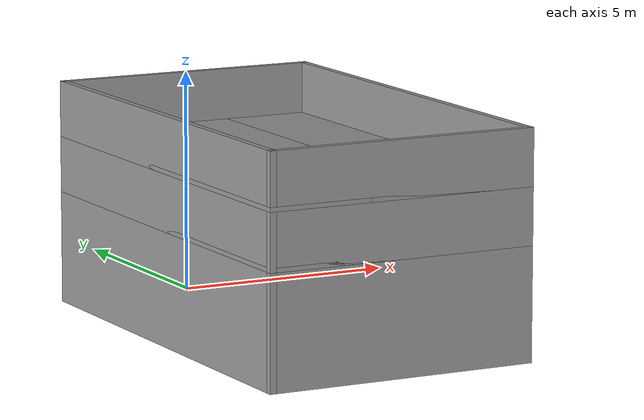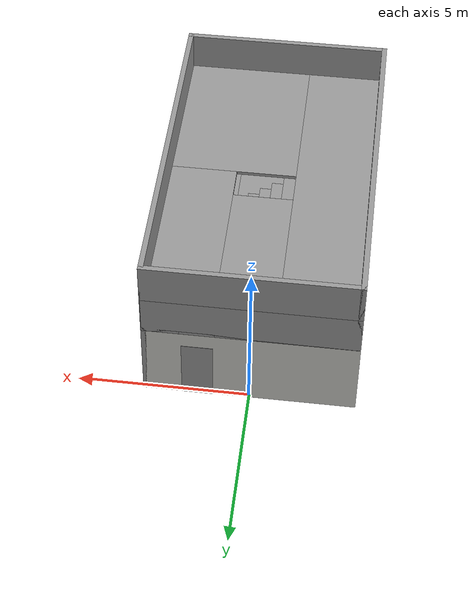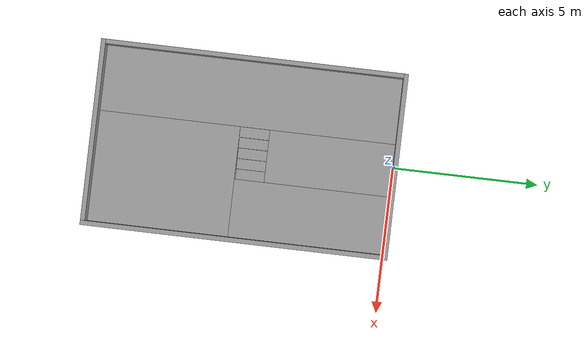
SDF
<?xml version='1.0'?>
<sdf version='1.6'>
  <model name='stairs_environment'>
    <pose frame=''>0 -5 0 0 -0 0</pose>
    <link name='Door_2'>
      <collision name='Door_2_Collision'>
        <geometry>
          <box>
            <size>0.9 0.17 2</size>
          </box>
        </geometry>
        <pose frame=''>0 0 1 0 -0 0</pose>
      </collision>
      <visual name='Door_2_Visual'>
        <pose frame=''>0 0 1 0 -0 0</pose>
        <geometry>
          <box>
            <size>0.9 0.17 2</size>
          </box>
        </geometry>
        <material>
          <script>
            <uri>file://media/materials/scripts/gazebo.material</uri>
            <name>Gazebo/Grey</name>
          </script>
        </material>
      </visual>
      <pose frame=''>1.5 5 0 0 -0 0</pose>
    </link>
    <link name='Floor_1'>
      <pose frame=''>0 0 2.5 0 -0 0</pose>
      <visual name='Floor_1_Visual_0'>
        <pose frame=''>-1.0375 0 0.05 0 -0 0</pose>
        <geometry>
          <box>
            <size>4.075 10.15 0.1</size>
          </box>
        </geometry>
        <material>
          <script>
            <uri>file://media/materials/scripts/gazebo.material</uri>
            <name>Gazebo/Grey</name>
          </script>
          <ambient>1 1 1 1</ambient>
        </material>
        <meta>
          <layer>1</layer>
        </meta>
      </visual>
      <collision name='Floor_1_Collision_0'>
        <geometry>
          <box>
            <size>4.075 10.15 0.1</size>
          </box>
        </geometry>
        <pose frame=''>-1.0375 0 0.05 0 -0 0</pose>
      </collision>
      <visual name='Floor_1_Visual_1'>
        <pose frame=''>2.0375 -2.1625 0.05 0 -0 0</pose>
        <geometry>
          <box>
            <size>2.075 5.825 0.1</size>
          </box>
        </geometry>
        <material>
          <script>
            <uri>file://media/materials/scripts/gazebo.material</uri>
            <name>Gazebo/Grey</name>
          </script>
          <ambient>1 1 1 1</ambient>
        </material>
        <meta>
          <layer>1</layer>
        </meta>
      </visual>
      <collision name='Floor_1_Collision_1'>
        <geometry>
          <box>
            <size>2.075 5.825 0.1</size>
          </box>
        </geometry>
        <pose frame=''>2.0375 -2.1625 0.05 0 -0 0</pose>
      </collision>
      <visual name='Floor_1_Visual_2'>
        <pose frame=''>2.5375 2.9125 0.05 0 -0 0</pose>
        <geometry>
          <box>
            <size>1.075 4.325 0.1</size>
          </box>
        </geometry>
        <material>
          <script>
            <uri>file://media/materials/scripts/gazebo.material</uri>
            <name>Gazebo/Grey</name>
          </script>
          <ambient>1 1 1 1</ambient>
        </material>
        <meta>
          <layer>1</layer>
        </meta>
      </visual>
      <collision name='Floor_1_Collision_2'>
        <geometry>
          <box>
            <size>1.075 4.325 0.1</size>
          </box>
        </geometry>
        <pose frame=''>2.5375 2.9125 0.05 0 -0 0</pose>
      </collision>
      <visual name='Floor_1_Visual_3'>
        <pose frame=''>1.5 4.6625 0.05 0 -0 0</pose>
        <geometry>
          <box>
            <size>1 0.825 0.1</size>
          </box>
        </geometry>
        <material>
          <script>
            <uri>file://media/materials/scripts/gazebo.material</uri>
            <name>Gazebo/Grey</name>
          </script>
          <ambient>1 1 1 1</ambient>
        </material>
        <meta>
          <layer>1</layer>
        </meta>
      </visual>
      <collision name='Floor_1_Collision_3'>
        <geometry>
          <box>
            <size>1 0.825 0.1</size>
          </box>
        </geometry>
        <pose frame=''>1.5 4.6625 0.05 0 -0 0</pose>
      </collision>
    </link>
    <link name='Floor_2'>
      <pose frame=''>0 0 3.75 0 -0 0</pose>
      <visual name='Floor_2_Visual_0'>
        <pose frame=''>-1.9125 0 0.05 0 -0 0</pose>
        <geometry>
          <box>
            <size>2.325 10.15 0.1</size>
          </box>
        </geometry>
        <material>
          <script>
            <uri>file://media/materials/scripts/gazebo.material</uri>
            <name>Gazebo/Grey</name>
          </script>
          <ambient>1 1 1 1</ambient>
        </material>
        <meta>
          <layer>2</layer>
        </meta>
      </visual>
      <collision name='Floor_2_Collision_0'>
        <geometry>
          <box>
            <size>2.325 10.15 0.1</size>
          </box>
        </geometry>
        <pose frame=''>-1.9125 0 0.05 0 -0 0</pose>
      </collision>
      <visual name='Floor_2_Visual_1'>
        <pose frame=''>1.1625 -2.66 0.05 0 -0 0</pose>
        <geometry>
          <box>
            <size>3.825 4.83 0.1</size>
          </box>
        </geometry>
        <material>
          <script>
            <uri>file://media/materials/scripts/gazebo.material</uri>
            <name>Gazebo/Grey</name>
          </script>
          <ambient>1 1 1 1</ambient>
        </material>
        <meta>
          <layer>2</layer>
        </meta>
      </visual>
      <collision name='Floor_2_Collision_1'>
        <geometry>
          <box>
            <size>3.825 4.83 0.1</size>
          </box>
        </geometry>
        <pose frame=''>1.1625 -2.66 0.05 0 -0 0</pose>
      </collision>
      <visual name='Floor_2_Visual_2'>
        <pose frame=''>2.0375 2.415 0.05 0 -0 0</pose>
        <geometry>
          <box>
            <size>2.075 5.32 0.1</size>
          </box>
        </geometry>
        <material>
          <script>
            <uri>file://media/materials/scripts/gazebo.material</uri>
            <name>Gazebo/Grey</name>
          </script>
          <ambient>1 1 1 1</ambient>
        </material>
        <meta>
          <layer>2</layer>
        </meta>
      </visual>
      <collision name='Floor_2_Collision_2'>
        <geometry>
          <box>
            <size>2.075 5.32 0.1</size>
          </box>
        </geometry>
        <pose frame=''>2.0375 2.415 0.05 0 -0 0</pose>
      </collision>
      <visual name='Floor_2_Visual_3'>
        <pose frame=''>0.125 2.91 0.05 0 -0 0</pose>
        <geometry>
          <box>
            <size>1.75 4.33 0.1</size>
          </box>
        </geometry>
        <material>
          <script>
            <uri>file://media/materials/scripts/gazebo.material</uri>
            <name>Gazebo/Grey</name>
          </script>
          <ambient>1 1 1 1</ambient>
        </material>
        <meta>
          <layer>2</layer>
        </meta>
      </visual>
      <collision name='Floor_2_Collision_3'>
        <geometry>
          <box>
            <size>1.75 4.33 0.1</size>
          </box>
        </geometry>
        <pose frame=''>0.125 2.91 0.05 0 -0 0</pose>
      </collision>
    </link>
    <link name='Stairs_10'>
      <visual name='Stairs_10_Visual_0'>
        <pose frame=''>1.5 4.075 0.125 0 -0 0</pose>
        <geometry>
          <box>
            <size>1 0.35 0.25</size>
          </box>
        </geometry>
        <material>
          <script>
            <uri>file://media/materials/scripts/gazebo.material</uri>
            <name>Gazebo/Grey</name>
          </script>
          <ambient>1 1 1 1</ambient>
        </material>
        <meta>
          <layer>0</layer>
        </meta>
      </visual>
      <collision name='Stairs_10_Collision_0'>
        <geometry>
          <box>
            <size>1 0.35 0.25</size>
          </box>
        </geometry>
        <pose frame=''>1.5 4.075 0.125 0 -0 0</pose>
      </collision>
      <visual name='Stairs_10_Visual_1'>
        <pose frame=''>1.5 3.725 0.375 0 -0 0</pose>
        <geometry>
          <box>
            <size>1 0.35 0.25</size>
          </box>
        </geometry>
        <material>
          <script>
            <uri>file://media/materials/scripts/gazebo.material</uri>
            <name>Gazebo/Grey</name>
          </script>
          <ambient>1 1 1 1</ambient>
        </material>
        <meta>
          <layer>0</layer>
        </meta>
      </visual>
      <collision name='Stairs_10_Collision_1'>
        <geometry>
          <box>
            <size>1 0.35 0.25</size>
          </box>
        </geometry>
        <pose frame=''>1.5 3.725 0.375 0 -0 0</pose>
      </collision>
      <visual name='Stairs_10_Visual_2'>
        <pose frame=''>1.5 3.375 0.625 0 -0 0</pose>
        <geometry>
          <box>
            <size>1 0.35 0.25</size>
          </box>
        </geometry>
        <material>
          <script>
            <uri>file://media/materials/scripts/gazebo.material</uri>
            <name>Gazebo/Grey</name>
          </script>
          <ambient>1 1 1 1</ambient>
        </material>
        <meta>
          <layer>0</layer>
        </meta>
      </visual>
      <collision name='Stairs_10_Collision_2'>
        <geometry>
          <box>
            <size>1 0.35 0.25</size>
          </box>
        </geometry>
        <pose frame=''>1.5 3.375 0.625 0 -0 0</pose>
      </collision>
      <visual name='Stairs_10_Visual_3'>
        <pose frame=''>1.5 3.025 0.875 0 -0 0</pose>
        <geometry>
          <box>
            <size>1 0.35 0.25</size>
          </box>
        </geometry>
        <material>
          <script>
            <uri>file://media/materials/scripts/gazebo.material</uri>
            <name>Gazebo/Grey</name>
          </script>
          <ambient>1 1 1 1</ambient>
        </material>
        <meta>
          <layer>0</layer>
        </meta>
      </visual>
      <collision name='Stairs_10_Collision_3'>
        <geometry>
          <box>
            <size>1 0.35 0.25</size>
          </box>
        </geometry>
        <pose frame=''>1.5 3.025 0.875 0 -0 0</pose>
      </collision>
      <visual name='Stairs_10_Visual_4'>
        <pose frame=''>1.5 2.675 1.125 0 -0 0</pose>
        <geometry>
          <box>
            <size>1 0.35 0.25</size>
          </box>
        </geometry>
        <material>
          <script>
            <uri>file://media/materials/scripts/gazebo.material</uri>
            <name>Gazebo/Grey</name>
          </script>
          <ambient>1 1 1 1</ambient>
        </material>
        <meta>
          <layer>0</layer>
        </meta>
      </visual>
      <collision name='Stairs_10_Collision_4'>
        <geometry>
          <box>
            <size>1 0.35 0.25</size>
          </box>
        </geometry>
        <pose frame=''>1.5 2.675 1.125 0 -0 0</pose>
      </collision>
      <visual name='Stairs_10_Visual_5'>
        <pose frame=''>1.5 2.325 1.375 0 -0 0</pose>
        <geometry>
          <box>
            <size>1 0.35 0.25</size>
          </box>
        </geometry>
        <material>
          <script>
            <uri>file://media/materials/scripts/gazebo.material</uri>
            <name>Gazebo/Grey</name>
          </script>
          <ambient>1 1 1 1</ambient>
        </material>
        <meta>
          <layer>0</layer>
        </meta>
      </visual>
      <collision name='Stairs_10_Collision_5'>
        <geometry>
          <box>
            <size>1 0.35 0.25</size>
          </box>
        </geometry>
        <pose frame=''>1.5 2.325 1.375 0 -0 0</pose>
      </collision>
      <visual name='Stairs_10_Visual_6'>
        <pose frame=''>1.5 1.975 1.625 0 -0 0</pose>
        <geometry>
          <box>
            <size>1 0.35 0.25</size>
          </box>
        </geometry>
        <material>
          <script>
            <uri>file://media/materials/scripts/gazebo.material</uri>
            <name>Gazebo/Grey</name>
          </script>
          <ambient>1 1 1 1</ambient>
        </material>
        <meta>
          <layer>0</layer>
        </meta>
      </visual>
      <collision name='Stairs_10_Collision_6'>
        <geometry>
          <box>
            <size>1 0.35 0.25</size>
          </box>
        </geometry>
        <pose frame=''>1.5 1.975 1.625 0 -0 0</pose>
      </collision>
      <visual name='Stairs_10_Visual_7'>
        <pose frame=''>1.5 1.625 1.875 0 -0 0</pose>
        <geometry>
          <box>
            <size>1 0.35 0.25</size>
          </box>
        </geometry>
        <material>
          <script>
            <uri>file://media/materials/scripts/gazebo.material</uri>
            <name>Gazebo/Grey</name>
          </script>
          <ambient>1 1 1 1</ambient>
        </material>
        <meta>
          <layer>0</layer>
        </meta>
      </visual>
      <collision name='Stairs_10_Collision_7'>
        <geometry>
          <box>
            <size>1 0.35 0.25</size>
          </box>
        </geometry>
        <pose frame=''>1.5 1.625 1.875 0 -0 0</pose>
      </collision>
      <visual name='Stairs_10_Visual_8'>
        <pose frame=''>1.5 1.275 2.125 0 -0 0</pose>
        <geometry>
          <box>
            <size>1 0.35 0.25</size>
          </box>
        </geometry>
        <material>
          <script>
            <uri>file://media/materials/scripts/gazebo.material</uri>
            <name>Gazebo/Grey</name>
          </script>
          <ambient>1 1 1 1</ambient>
        </material>
        <meta>
          <layer>0</layer>
        </meta>
      </visual>
      <collision name='Stairs_10_Collision_8'>
        <geometry>
          <box>
            <size>1 0.35 0.25</size>
          </box>
        </geometry>
        <pose frame=''>1.5 1.275 2.125 0 -0 0</pose>
      </collision>
      <visual name='Stairs_10_Visual_9'>
        <pose frame=''>1.5 0.925 2.375 0 -0 0</pose>
        <geometry>
          <box>
            <size>1 0.35 0.25</size>
          </box>
        </geometry>
        <material>
          <script>
            <uri>file://media/materials/scripts/gazebo.material</uri>
            <name>Gazebo/Grey</name>
          </script>
          <ambient>1 1 1 1</ambient>
        </material>
        <meta>
          <layer>0</layer>
        </meta>
      </visual>
      <collision name='Stairs_10_Collision_9'>
        <geometry>
          <box>
            <size>1 0.35 0.25</size>
          </box>
        </geometry>
        <pose frame=''>1.5 0.925 2.375 0 -0 0</pose>
      </collision>
    </link>
    <link name='Stairs_15'>
      <visual name='Stairs_15_Visual_0'>
        <pose frame=''>0.825 0.25 2.625 0 0 -1.5708</pose>
        <geometry>
          <box>
            <size>0.99 0.35 0.25</size>
          </box>
        </geometry>
        <material>
          <script>
            <uri>file://media/materials/scripts/gazebo.material</uri>
            <name>Gazebo/Grey</name>
          </script>
          <ambient>1 1 1 1</ambient>
        </material>
        <meta>
          <layer>1</layer>
        </meta>
      </visual>
      <collision name='Stairs_15_Collision_0'>
        <geometry>
          <box>
            <size>0.99 0.35 0.25</size>
          </box>
        </geometry>
        <pose frame=''>0.825 0.25 2.625 0 0 -1.5708</pose>
      </collision>
      <visual name='Stairs_15_Visual_1'>
        <pose frame=''>0.475 0.25 2.875 0 0 -1.5708</pose>
        <geometry>
          <box>
            <size>0.99 0.35 0.25</size>
          </box>
        </geometry>
        <material>
          <script>
            <uri>file://media/materials/scripts/gazebo.material</uri>
            <name>Gazebo/Grey</name>
          </script>
          <ambient>1 1 1 1</ambient>
        </material>
        <meta>
          <layer>1</layer>
        </meta>
      </visual>
      <collision name='Stairs_15_Collision_1'>
        <geometry>
          <box>
            <size>0.99 0.35 0.25</size>
          </box>
        </geometry>
        <pose frame=''>0.475 0.25 2.875 0 0 -1.5708</pose>
      </collision>
      <visual name='Stairs_15_Visual_2'>
        <pose frame=''>0.125 0.25 3.125 0 0 -1.5708</pose>
        <geometry>
          <box>
            <size>0.99 0.35 0.25</size>
          </box>
        </geometry>
        <material>
          <script>
            <uri>file://media/materials/scripts/gazebo.material</uri>
            <name>Gazebo/Grey</name>
          </script>
          <ambient>1 1 1 1</ambient>
        </material>
        <meta>
          <layer>1</layer>
        </meta>
      </visual>
      <collision name='Stairs_15_Collision_2'>
        <geometry>
          <box>
            <size>0.99 0.35 0.25</size>
          </box>
        </geometry>
        <pose frame=''>0.125 0.25 3.125 0 0 -1.5708</pose>
      </collision>
      <visual name='Stairs_15_Visual_3'>
        <pose frame=''>-0.225 0.25 3.375 0 0 -1.5708</pose>
        <geometry>
          <box>
            <size>0.99 0.35 0.25</size>
          </box>
        </geometry>
        <material>
          <script>
            <uri>file://media/materials/scripts/gazebo.material</uri>
            <name>Gazebo/Grey</name>
          </script>
          <ambient>1 1 1 1</ambient>
        </material>
        <meta>
          <layer>1</layer>
        </meta>
      </visual>
      <collision name='Stairs_15_Collision_3'>
        <geometry>
          <box>
            <size>0.99 0.35 0.25</size>
          </box>
        </geometry>
        <pose frame=''>-0.225 0.25 3.375 0 0 -1.5708</pose>
      </collision>
      <visual name='Stairs_15_Visual_4'>
        <pose frame=''>-0.575 0.25 3.625 0 0 -1.5708</pose>
        <geometry>
          <box>
            <size>0.99 0.35 0.25</size>
          </box>
        </geometry>
        <material>
          <script>
            <uri>file://media/materials/scripts/gazebo.material</uri>
            <name>Gazebo/Grey</name>
          </script>
          <ambient>1 1 1 1</ambient>
        </material>
        <meta>
          <layer>1</layer>
        </meta>
      </visual>
      <collision name='Stairs_15_Collision_4'>
        <geometry>
          <box>
            <size>0.99 0.35 0.25</size>
          </box>
        </geometry>
        <pose frame=''>-0.575 0.25 3.625 0 0 -1.5708</pose>
      </collision>
    </link>
    <link name='Wall_17'>
      <collision name='Wall_17_Collision'>
        <geometry>
          <box>
            <size>6.15 0.15 2.5</size>
          </box>
        </geometry>
        <pose frame=''>0 0 1.25 0 -0 0</pose>
      </collision>
      <visual name='Wall_17_Visual'>
        <pose frame=''>0 0 1.25 0 -0 0</pose>
        <geometry>
          <box>
            <size>6.15 0.15 2.5</size>
          </box>
        </geometry>
        <material>
          <script>
            <uri>file://media/materials/scripts/gazebo.material</uri>
            <name>Gazebo/CeilingTiled</name>
          </script>
          <ambient>1 1 1 1</ambient>
        </material>
        <meta>
          <layer>0</layer>
        </meta>
      </visual>
      <pose frame=''>0 5 0 0 -0 0</pose>
    </link>
    <link name='Wall_18'>
      <collision name='Wall_18_Collision'>
        <geometry>
          <box>
            <size>10.15 0.15 2.5</size>
          </box>
        </geometry>
        <pose frame=''>0 0 1.25 0 -0 0</pose>
      </collision>
      <visual name='Wall_18_Visual'>
        <pose frame=''>0 0 1.25 0 -0 0</pose>
        <geometry>
          <box>
            <size>10.15 0.15 2.5</size>
          </box>
        </geometry>
        <material>
          <script>
            <uri>file://media/materials/scripts/gazebo.material</uri>
            <name>Gazebo/Grey</name>
          </script>
          <ambient>1 1 1 1</ambient>
        </material>
        <meta>
          <layer>0</layer>
        </meta>
      </visual>
      <pose frame=''>3 0 0 0 -0 -1.5708</pose>
    </link>
    <link name='Wall_19'>
      <collision name='Wall_19_Collision'>
        <geometry>
          <box>
            <size>6.15 0.15 2.5</size>
          </box>
        </geometry>
        <pose frame=''>0 0 1.25 0 -0 0</pose>
      </collision>
      <visual name='Wall_19_Visual'>
        <pose frame=''>0 0 1.25 0 -0 0</pose>
        <geometry>
          <box>
            <size>6.15 0.15 2.5</size>
          </box>
        </geometry>
        <material>
          <script>
            <uri>file://media/materials/scripts/gazebo.material</uri>
            <name>Gazebo/Grey</name>
          </script>
          <ambient>1 1 1 1</ambient>
        </material>
        <meta>
          <layer>0</layer>
        </meta>
      </visual>
      <pose frame=''>0 -5 0 0 -0 3.14159</pose>
    </link>
    <link name='Wall_20'>
      <collision name='Wall_20_Collision'>
        <geometry>
          <box>
            <size>10.15 0.15 2.5</size>
          </box>
        </geometry>
        <pose frame=''>0 0 1.25 0 -0 0</pose>
      </collision>
      <visual name='Wall_20_Visual'>
        <pose frame=''>0 0 1.25 0 -0 0</pose>
        <geometry>
          <box>
            <size>10.15 0.15 2.5</size>
          </box>
        </geometry>
        <material>
          <script>
            <uri>file://media/materials/scripts/gazebo.material</uri>
            <name>Gazebo/Grey</name>
          </script>
          <ambient>1 1 1 1</ambient>
        </material>
        <meta>
          <layer>0</layer>
        </meta>
      </visual>
      <pose frame=''>-3 0 0 0 -0 1.5708</pose>
    </link>
    <link name='Wall_22'>
      <collision name='Wall_22_Collision'>
        <geometry>
          <box>
            <size>6.15 0.15 1.25</size>
          </box>
        </geometry>
        <pose frame=''>0 0 0.625 0 -0 0</pose>
      </collision>
      <visual name='Wall_22_Visual'>
        <pose frame=''>0 0 0.625 0 -0 0</pose>
        <geometry>
          <box>
            <size>6.15 0.15 1.25</size>
          </box>
        </geometry>
        <material>
          <script>
            <uri>file://media/materials/scripts/gazebo.material</uri>
            <name>Gazebo/Grey</name>
          </script>
          <ambient>1 1 1 1</ambient>
        </material>
        <meta>
          <layer>1</layer>
        </meta>
      </visual>
      <pose frame=''>0 5 2.5 0 -0 0</pose>
    </link>
    <link name='Wall_23'>
      <collision name='Wall_23_Collision'>
        <geometry>
          <box>
            <size>10.15 0.15 1.25</size>
          </box>
        </geometry>
        <pose frame=''>0 0 0.625 0 -0 0</pose>
      </collision>
      <visual name='Wall_23_Visual'>
        <pose frame=''>0 0 0.625 0 -0 0</pose>
        <geometry>
          <box>
            <size>10.15 0.15 1.25</size>
          </box>
        </geometry>
        <material>
          <script>
            <uri>file://media/materials/scripts/gazebo.material</uri>
            <name>Gazebo/Grey</name>
          </script>
          <ambient>1 1 1 1</ambient>
        </material>
        <meta>
          <layer>1</layer>
        </meta>
      </visual>
      <pose frame=''>3 0 2.5 0 -0 -1.5708</pose>
    </link>
    <link name='Wall_24'>
      <collision name='Wall_24_Collision'>
        <geometry>
          <box>
            <size>6.15 0.15 1.25</size>
          </box>
        </geometry>
        <pose frame=''>0 0 0.625 0 -0 0</pose>
      </collision>
      <visual name='Wall_24_Visual'>
        <pose frame=''>0 0 0.625 0 -0 0</pose>
        <geometry>
          <box>
            <size>6.15 0.15 1.25</size>
          </box>
        </geometry>
        <material>
          <script>
            <uri>file://media/materials/scripts/gazebo.material</uri>
            <name>Gazebo/Grey</name>
          </script>
          <ambient>1 1 1 1</ambient>
        </material>
        <meta>
          <layer>1</layer>
        </meta>
      </visual>
      <pose frame=''>0 -5 2.5 0 -0 3.14159</pose>
    </link>
    <link name='Wall_25'>
      <collision name='Wall_25_Collision'>
        <geometry>
          <box>
            <size>10.15 0.15 1.25</size>
          </box>
        </geometry>
        <pose frame=''>0 0 0.625 0 -0 0</pose>
      </collision>
      <visual name='Wall_25_Visual'>
        <pose frame=''>0 0 0.625 0 -0 0</pose>
        <geometry>
          <box>
            <size>10.15 0.15 1.25</size>
          </box>
        </geometry>
        <material>
          <script>
            <uri>file://media/materials/scripts/gazebo.material</uri>
            <name>Gazebo/Grey</name>
          </script>
          <ambient>1 1 1 1</ambient>
        </material>
        <meta>
          <layer>1</layer>
        </meta>
      </visual>
      <pose frame=''>-3 0 2.5 0 -0 1.5708</pose>
    </link>
    <link name='Wall_26'>
      <collision name='Wall_26_Collision'>
        <geometry>
          <box>
            <size>6.15 0.15 1.25</size>
          </box>
        </geometry>
        <pose frame=''>0 0 0.625 0 -0 0</pose>
      </collision>
      <visual name='Wall_26_Visual'>
        <pose frame=''>0 0 0.625 0 -0 0</pose>
        <geometry>
          <box>
            <size>6.15 0.15 1.25</size>
          </box>
        </geometry>
        <material>
          <script>
            <uri>file://media/materials/scripts/gazebo.material</uri>
            <name>Gazebo/Grey</name>
          </script>
          <ambient>1 1 1 1</ambient>
        </material>
        <meta>
          <layer>2</layer>
        </meta>
      </visual>
      <pose frame=''>0 5 3.75 0 -0 0</pose>
    </link>
    <link name='Wall_27'>
      <collision name='Wall_27_Collision'>
        <geometry>
          <box>
            <size>10.15 0.15 1.25</size>
          </box>
        </geometry>
        <pose frame=''>0 0 0.625 0 -0 0</pose>
      </collision>
      <visual name='Wall_27_Visual'>
        <pose frame=''>0 0 0.625 0 -0 0</pose>
        <geometry>
          <box>
            <size>10.15 0.15 1.25</size>
          </box>
        </geometry>
        <material>
          <script>
            <uri>file://media/materials/scripts/gazebo.material</uri>
            <name>Gazebo/Grey</name>
          </script>
          <ambient>1 1 1 1</ambient>
        </material>
        <meta>
          <layer>2</layer>
        </meta>
      </visual>
      <pose frame=''>3 0 3.75 0 -0 -1.5708</pose>
    </link>
    <link name='Wall_28'>
      <collision name='Wall_28_Collision'>
        <geometry>
          <box>
            <size>6.15 0.15 1.25</size>
          </box>
        </geometry>
        <pose frame=''>0 0 0.625 0 -0 0</pose>
      </collision>
      <visual name='Wall_28_Visual'>
        <pose frame=''>0 0 0.625 0 -0 0</pose>
        <geometry>
          <box>
            <size>6.15 0.15 1.25</size>
          </box>
        </geometry>
        <material>
          <script>
            <uri>file://media/materials/scripts/gazebo.material</uri>
            <name>Gazebo/Grey</name>
          </script>
          <ambient>1 1 1 1</ambient>
        </material>
        <meta>
          <layer>2</layer>
        </meta>
      </visual>
      <pose frame=''>0 -5 3.75 0 -0 3.14159</pose>
    </link>
    <link name='Wall_29'>
      <collision name='Wall_29_Collision'>
        <geometry>
          <box>
            <size>10.15 0.15 1.25</size>
          </box>
        </geometry>
        <pose frame=''>0 0 0.625 0 -0 0</pose>
      </collision>
      <visual name='Wall_29_Visual'>
        <pose frame=''>0 0 0.625 0 -0 0</pose>
        <geometry>
          <box>
            <size>10.15 0.15 1.25</size>
          </box>
        </geometry>
        <material>
          <script>
            <uri>file://media/materials/scripts/gazebo.material</uri>
            <name>Gazebo/Grey</name>
          </script>
          <ambient>1 1 1 1</ambient>
        </material>
        <meta>
          <layer>2</layer>
        </meta>
      </visual>
      <pose frame=''>-3 0 3.75 0 -0 1.5708</pose>
    </link>
    <static>1</static>
  </model>
</sdf>
